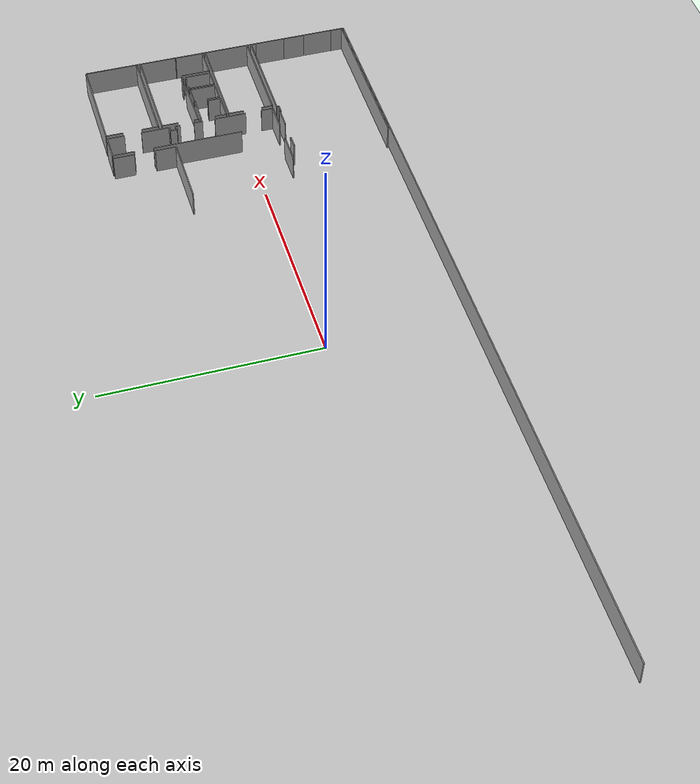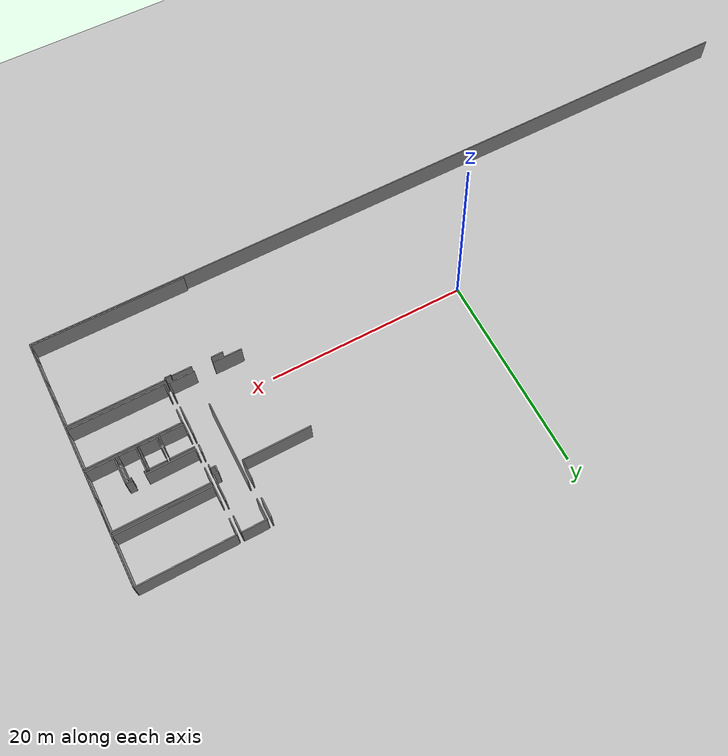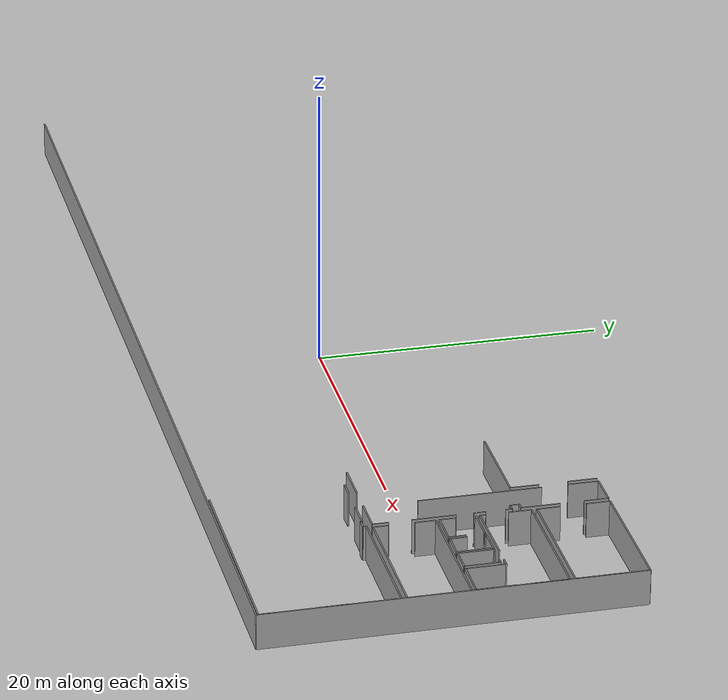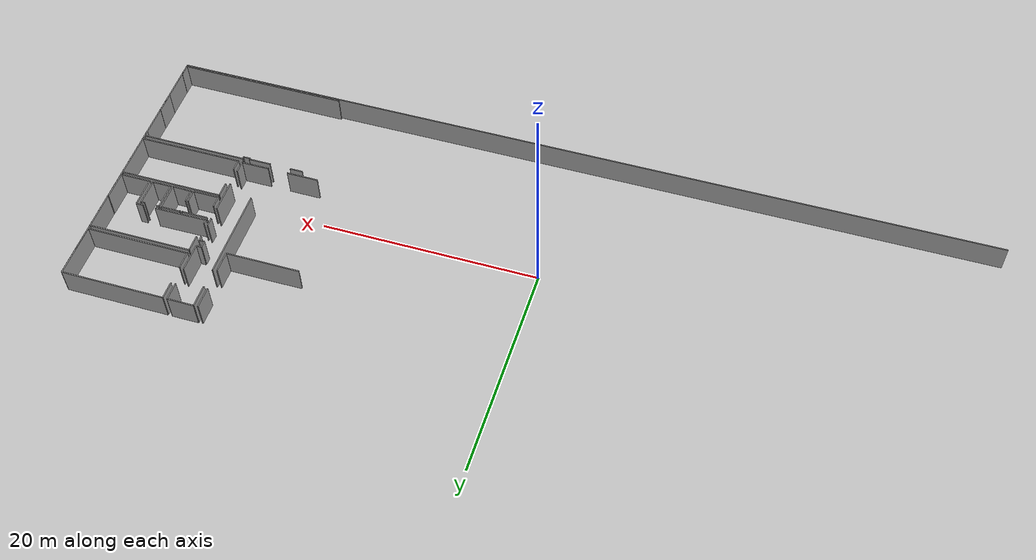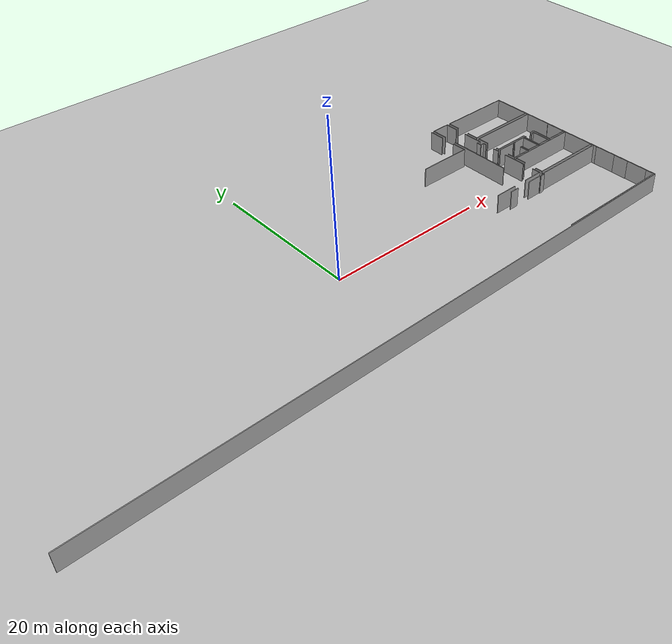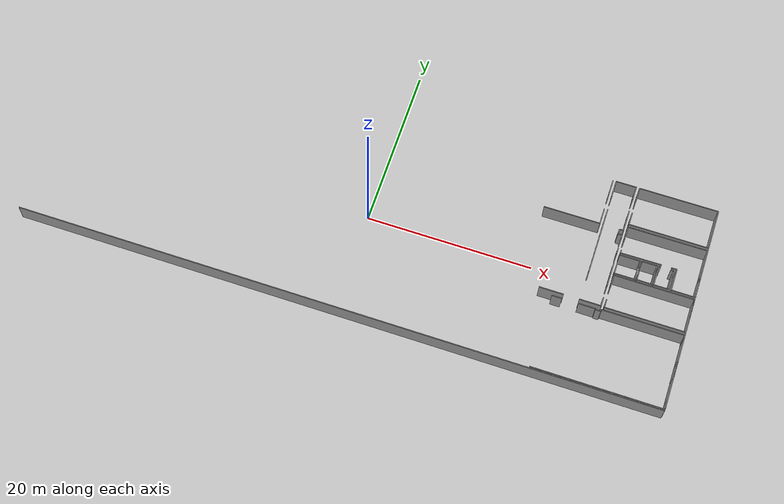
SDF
<sdf version="1.6">
 <world name="default">
  <model name="ground_plane">
   <static>1</static>
   <link name="link">
    <collision name="collision">
     <geometry><plane><normal>0 0 1</normal><size>100 100</size></plane></geometry>
     <surface><friction><ode><mu>100</mu><mu2>50</mu2></ode></friction></surface>
    </collision>
    <visual name="visual">
     <cast_shadows>0</cast_shadows>
     <geometry><plane><normal>0 0 1</normal><size>100 100</size></plane></geometry>
     <material>
      <script><uri>file://media/materials/scripts/gazebo.material</uri><name>Gazebo/Grey</name></script>
     </material>
    </visual>
   </link>
  </model>
  <model name="0510030965_A-40">
   <static>1</static>
   <link name="Wall_162">
    <collision name="Wall_162_Collision">
     <geometry><box><size>8.38063311874 0.1 2.5</size></box></geometry>
     <pose>4.19031655937 0 1.25 0 0 0</pose>
    </collision>
    <visual name="Wall_162_Visual">
     <pose>4.19031655937 0 1.25 0 0 0</pose>
     <geometry><box><size>8.38063311874 0.1 2.5</size></box></geometry>
     <material>
      <script><uri>file://media/materials/scripts/gazebo.material</uri><name>Gazebo/Grey</name></script>
      <ambient>1 1 1 1</ambient>
     </material>
    </visual>
    <pose>65.165898442 -12.2641677142 0 0 0 1.57079632679</pose>
   </link>
   <link name="Wall_163">
    <collision name="Wall_163_Collision">
     <geometry><box><size>2.09084098384 0.1 2.5</size></box></geometry>
     <pose>1.04542049192 0 1.25 0 0 0</pose>
    </collision>
    <visual name="Wall_163_Visual">
     <pose>1.04542049192 0 1.25 0 0 0</pose>
     <geometry><box><size>2.09084098384 0.1 2.5</size></box></geometry>
     <material>
      <script><uri>file://media/materials/scripts/gazebo.material</uri><name>Gazebo/Grey</name></script>
      <ambient>1 1 1 1</ambient>
     </material>
    </visual>
    <pose>65.165898442 -2.09592015542 0 0 0 1.57079632679</pose>
   </link>
   <link name="Wall_164">
    <collision name="Wall_164_Collision">
     <geometry><box><size>2.43241527307 0.1 2.5</size></box></geometry>
     <pose>1.21620763653 0 1.25 0 0 0</pose>
    </collision>
    <visual name="Wall_164_Visual">
     <pose>1.21620763653 0 1.25 0 0 0</pose>
     <geometry><box><size>2.43241527307 0.1 2.5</size></box></geometry>
     <material>
      <script><uri>file://media/materials/scripts/gazebo.material</uri><name>Gazebo/Grey</name></script>
      <ambient>1 1 1 1</ambient>
     </material>
    </visual>
    <pose>65.165898442 -0.00507917158711 0 0 0 0.0</pose>
   </link>
   <link name="Wall_165">
    <collision name="Wall_165_Collision">
     <geometry><box><size>1.6570797303 0.1 2.5</size></box></geometry>
     <pose>0.828539865148 0 1.25 0 0 0</pose>
    </collision>
    <visual name="Wall_165_Visual">
     <pose>0.828539865148 0 1.25 0 0 0</pose>
     <geometry><box><size>1.6570797303 0.1 2.5</size></box></geometry>
     <material>
      <script><uri>file://media/materials/scripts/gazebo.material</uri><name>Gazebo/Grey</name></script>
      <ambient>1 1 1 1</ambient>
     </material>
    </visual>
    <pose>67.598313715 -0.00507917158711 0 0 0 -1.57079632679</pose>
   </link>
   <link name="Wall_166">
    <collision name="Wall_166_Collision">
     <geometry><box><size>2.65386715427 0.1 2.5</size></box></geometry>
     <pose>1.32693357713 0 1.25 0 0 0</pose>
    </collision>
    <visual name="Wall_166_Visual">
     <pose>1.32693357713 0 1.25 0 0 0</pose>
     <geometry><box><size>2.65386715427 0.1 2.5</size></box></geometry>
     <material>
      <script><uri>file://media/materials/scripts/gazebo.material</uri><name>Gazebo/Grey</name></script>
      <ambient>1 1 1 1</ambient>
     </material>
    </visual>
    <pose>67.598313715 -3.26514545478 0 0 0 -1.57079632679</pose>
   </link>
   <link name="Wall_167">
    <collision name="Wall_167_Collision">
     <geometry><box><size>0.489378182418 0.1 2.5</size></box></geometry>
     <pose>0.244689091209 0 1.25 0 0 0</pose>
    </collision>
    <visual name="Wall_167_Visual">
     <pose>0.244689091209 0 1.25 0 0 0</pose>
     <geometry><box><size>0.489378182418 0.1 2.5</size></box></geometry>
     <material>
      <script><uri>file://media/materials/scripts/gazebo.material</uri><name>Gazebo/Grey</name></script>
      <ambient>1 1 1 1</ambient>
     </material>
    </visual>
    <pose>67.598313715 -5.91901260904 0 0 0 3.14159265359</pose>
   </link>
   <link name="Wall_168">
    <collision name="Wall_168_Collision">
     <geometry><box><size>0.625499980953 0.1 2.5</size></box></geometry>
     <pose>0.312749990477 0 1.25 0 0 0</pose>
    </collision>
    <visual name="Wall_168_Visual">
     <pose>0.312749990477 0 1.25 0 0 0</pose>
     <geometry><box><size>0.625499980953 0.1 2.5</size></box></geometry>
     <material>
      <script><uri>file://media/materials/scripts/gazebo.material</uri><name>Gazebo/Grey</name></script>
      <ambient>1 1 1 1</ambient>
     </material>
    </visual>
    <pose>67.1089355326 -5.91901260904 0 0 0 -1.57079632679</pose>
   </link>
   <link name="Wall_169">
    <collision name="Wall_169_Collision">
     <geometry><box><size>0.496869960509 0.1 2.5</size></box></geometry>
     <pose>0.248434980255 0 1.25 0 0 0</pose>
    </collision>
    <visual name="Wall_169_Visual">
     <pose>0.248434980255 0 1.25 0 0 0</pose>
     <geometry><box><size>0.496869960509 0.1 2.5</size></box></geometry>
     <material>
      <script><uri>file://media/materials/scripts/gazebo.material</uri><name>Gazebo/Grey</name></script>
      <ambient>1 1 1 1</ambient>
     </material>
    </visual>
    <pose>67.1089355326 -6.54451259 0 0 0 0.0</pose>
   </link>
   <link name="Wall_170">
    <collision name="Wall_170_Collision">
     <geometry><box><size>0.419539573096 0.1 2.5</size></box></geometry>
     <pose>0.209769786548 0 1.25 0 0 0</pose>
    </collision>
    <visual name="Wall_170_Visual">
     <pose>0.209769786548 0 1.25 0 0 0</pose>
     <geometry><box><size>0.419539573096 0.1 2.5</size></box></geometry>
     <material>
      <script><uri>file://media/materials/scripts/gazebo.material</uri><name>Gazebo/Grey</name></script>
      <ambient>1 1 1 1</ambient>
     </material>
    </visual>
    <pose>67.6058054931 -6.54451259 0 0 0 -1.57079632679</pose>
   </link>
   <link name="Wall_171">
    <collision name="Wall_171_Collision">
     <geometry><box><size>0.812667453938 0.1 2.5</size></box></geometry>
     <pose>0.406333726969 0 1.25 0 0 0</pose>
    </collision>
    <visual name="Wall_171_Visual">
     <pose>0.406333726969 0 1.25 0 0 0</pose>
     <geometry><box><size>0.812667453938 0.1 2.5</size></box></geometry>
     <material>
      <script><uri>file://media/materials/scripts/gazebo.material</uri><name>Gazebo/Grey</name></script>
      <ambient>1 1 1 1</ambient>
     </material>
    </visual>
    <pose>67.6058054931 -8.29352532602 0 0 0 -1.57079632679</pose>
   </link>
   <link name="Wall_172">
    <collision name="Wall_172_Collision">
     <geometry><box><size>2.97855319797 0.1 2.5</size></box></geometry>
     <pose>1.48927659899 0 1.25 0 0 0</pose>
    </collision>
    <visual name="Wall_172_Visual">
     <pose>1.48927659899 0 1.25 0 0 0</pose>
     <geometry><box><size>2.97855319797 0.1 2.5</size></box></geometry>
     <material>
      <script><uri>file://media/materials/scripts/gazebo.material</uri><name>Gazebo/Grey</name></script>
      <ambient>1 1 1 1</ambient>
     </material>
    </visual>
    <pose>67.6058054931 -10.2876080911 0 0 0 -1.57079632679</pose>
   </link>
   <link name="Wall_173">
    <collision name="Wall_173_Collision">
     <geometry><box><size>1.11741774917 0.1 2.5</size></box></geometry>
     <pose>0.558708874583 0 1.25 0 0 0</pose>
    </collision>
    <visual name="Wall_173_Visual">
     <pose>0.558708874583 0 1.25 0 0 0</pose>
     <geometry><box><size>1.11741774917 0.1 2.5</size></box></geometry>
     <material>
      <script><uri>file://media/materials/scripts/gazebo.material</uri><name>Gazebo/Grey</name></script>
      <ambient>1 1 1 1</ambient>
     </material>
    </visual>
    <pose>67.6058054931 -14.7821670286 0 0 0 -1.57079632679</pose>
   </link>
   <link name="Wall_174">
    <collision name="Wall_174_Collision">
     <geometry><box><size>2.56548956865 0.1 2.5</size></box></geometry>
     <pose>1.28274478433 0 1.25 0 0 0</pose>
    </collision>
    <visual name="Wall_174_Visual">
     <pose>1.28274478433 0 1.25 0 0 0</pose>
     <geometry><box><size>2.56548956865 0.1 2.5</size></box></geometry>
     <material>
      <script><uri>file://media/materials/scripts/gazebo.material</uri><name>Gazebo/Grey</name></script>
      <ambient>1 1 1 1</ambient>
     </material>
    </visual>
    <pose>67.6058054931 -15.8995847777 0 0 0 3.14159265359</pose>
   </link>
   <link name="Wall_175">
    <collision name="Wall_175_Collision">
     <geometry><box><size>2.90782573362 0.1 2.5</size></box></geometry>
     <pose>1.45391286681 0 1.25 0 0 0</pose>
    </collision>
    <visual name="Wall_175_Visual">
     <pose>1.45391286681 0 1.25 0 0 0</pose>
     <geometry><box><size>2.90782573362 0.1 2.5</size></box></geometry>
     <material>
      <script><uri>file://media/materials/scripts/gazebo.material</uri><name>Gazebo/Grey</name></script>
      <ambient>1 1 1 1</ambient>
     </material>
    </visual>
    <pose>63.1991162241 -15.8995847777 0 0 0 3.14159265359</pose>
   </link>
   <link name="Wall_178">
    <collision name="Wall_178_Collision">
     <geometry><box><size>1.1845897934 0.1 2.5</size></box></geometry>
     <pose>0.592294896702 0 1.25 0 0 0</pose>
    </collision>
    <visual name="Wall_178_Visual">
     <pose>0.592294896702 0 1.25 0 0 0</pose>
     <geometry><box><size>1.1845897934 0.1 2.5</size></box></geometry>
     <material>
      <script><uri>file://media/materials/scripts/gazebo.material</uri><name>Gazebo/Grey</name></script>
      <ambient>1 1 1 1</ambient>
     </material>
    </visual>
    <pose>61.9547191853 -16.4426751997 0 0 0 0.0</pose>
   </link>
   <link name="Wall_179">
    <collision name="Wall_179_Collision">
     <geometry><box><size>2.01363757571 0.1 2.5</size></box></geometry>
     <pose>1.00681878786 0 1.25 0 0 0</pose>
    </collision>
    <visual name="Wall_179_Visual">
     <pose>1.00681878786 0 1.25 0 0 0</pose>
     <geometry><box><size>2.01363757571 0.1 2.5</size></box></geometry>
     <material>
      <script><uri>file://media/materials/scripts/gazebo.material</uri><name>Gazebo/Grey</name></script>
      <ambient>1 1 1 1</ambient>
     </material>
    </visual>
    <pose>65.0866633652 -16.4426751997 0 0 0 0.0</pose>
   </link>
   <link name="Wall_180">
    <collision name="Wall_180_Collision">
     <geometry><box><size>0.102091348901 0.1 2.5</size></box></geometry>
     <pose>0.0510456744505 0 1.25 0 0 0</pose>
    </collision>
    <visual name="Wall_180_Visual">
     <pose>0.0510456744505 0 1.25 0 0 0</pose>
     <geometry><box><size>0.102091348901 0.1 2.5</size></box></geometry>
     <material>
      <script><uri>file://media/materials/scripts/gazebo.material</uri><name>Gazebo/Grey</name></script>
      <ambient>1 1 1 1</ambient>
     </material>
    </visual>
    <pose>67.1003009409 -16.4426751997 0 0 0 -1.57079632679</pose>
   </link>
   <link name="Wall_181">
    <collision name="Wall_181_Collision">
     <geometry><box><size>0.631341028278 0.1 2.5</size></box></geometry>
     <pose>0.315670514139 0 1.25 0 0 0</pose>
    </collision>
    <visual name="Wall_181_Visual">
     <pose>0.315670514139 0 1.25 0 0 0</pose>
     <geometry><box><size>0.631341028278 0.1 2.5</size></box></geometry>
     <material>
      <script><uri>file://media/materials/scripts/gazebo.material</uri><name>Gazebo/Grey</name></script>
      <ambient>1 1 1 1</ambient>
     </material>
    </visual>
    <pose>67.1003009409 -16.5447665486 0 0 0 0.0</pose>
   </link>
   <link name="Wall_182">
    <collision name="Wall_182_Collision">
     <geometry><box><size>0.214087082397 0.1 2.5</size></box></geometry>
     <pose>0.107043541198 0 1.25 0 0 0</pose>
    </collision>
    <visual name="Wall_182_Visual">
     <pose>0.107043541198 0 1.25 0 0 0</pose>
     <geometry><box><size>0.214087082397 0.1 2.5</size></box></geometry>
     <material>
      <script><uri>file://media/materials/scripts/gazebo.material</uri><name>Gazebo/Grey</name></script>
      <ambient>1 1 1 1</ambient>
     </material>
    </visual>
    <pose>67.7316419692 -16.5447665486 0 0 0 1.57079632679</pose>
   </link>
   <link name="Wall_183">
    <collision name="Wall_183_Collision">
     <geometry><box><size>9.72343910708 0.1 2.5</size></box></geometry>
     <pose>4.86171955354 0 1.25 0 0 0</pose>
    </collision>
    <visual name="Wall_183_Visual">
     <pose>4.86171955354 0 1.25 0 0 0</pose>
     <geometry><box><size>9.72343910708 0.1 2.5</size></box></geometry>
     <material>
      <script><uri>file://media/materials/scripts/gazebo.material</uri><name>Gazebo/Grey</name></script>
      <ambient>1 1 1 1</ambient>
     </material>
    </visual>
    <pose>67.7316419692 -16.3306794662 0 0 0 0.0</pose>
   </link>
   <link name="Wall_184">
    <collision name="Wall_184_Collision">
     <geometry><box><size>0.493695478267 0.1 2.5</size></box></geometry>
     <pose>0.246847739134 0 1.25 0 0 0</pose>
    </collision>
    <visual name="Wall_184_Visual">
     <pose>0.246847739134 0 1.25 0 0 0</pose>
     <geometry><box><size>0.493695478267 0.1 2.5</size></box></geometry>
     <material>
      <script><uri>file://media/materials/scripts/gazebo.material</uri><name>Gazebo/Grey</name></script>
      <ambient>1 1 1 1</ambient>
     </material>
    </visual>
    <pose>77.4550810763 -16.3306794662 0 0 0 -1.57079632679</pose>
   </link>
   <link name="Wall_185">
    <collision name="Wall_185_Collision">
     <geometry><box><size>2.00957423844 0.1 2.5</size></box></geometry>
     <pose>1.00478711922 0 1.25 0 0 0</pose>
    </collision>
    <visual name="Wall_185_Visual">
     <pose>1.00478711922 0 1.25 0 0 0</pose>
     <geometry><box><size>2.00957423844 0.1 2.5</size></box></geometry>
     <material>
      <script><uri>file://media/materials/scripts/gazebo.material</uri><name>Gazebo/Grey</name></script>
      <ambient>1 1 1 1</ambient>
     </material>
    </visual>
    <pose>77.4550810763 -19.6289665156 0 0 0 -1.57079632679</pose>
   </link>
   <link name="Wall_186">
    <collision name="Wall_186_Collision">
     <geometry><box><size>1.13202036748 0.1 2.5</size></box></geometry>
     <pose>0.566010183739 0 1.25 0 0 0</pose>
    </collision>
    <visual name="Wall_186_Visual">
     <pose>0.566010183739 0 1.25 0 0 0</pose>
     <geometry><box><size>1.13202036748 0.1 2.5</size></box></geometry>
     <material>
      <script><uri>file://media/materials/scripts/gazebo.material</uri><name>Gazebo/Grey</name></script>
      <ambient>1 1 1 1</ambient>
     </material>
    </visual>
    <pose>77.4550810763 -24.4320851269 0 0 0 -1.57079632679</pose>
   </link>
   <link name="Wall_187">
    <collision name="Wall_187_Collision">
     <geometry><box><size>15.5004121963 0.1 2.5</size></box></geometry>
     <pose>7.75020609815 0 1.25 0 0 0</pose>
    </collision>
    <visual name="Wall_187_Visual">
     <pose>7.75020609815 0 1.25 0 0 0</pose>
     <geometry><box><size>15.5004121963 0.1 2.5</size></box></geometry>
     <material>
      <script><uri>file://media/materials/scripts/gazebo.material</uri><name>Gazebo/Grey</name></script>
      <ambient>1 1 1 1</ambient>
     </material>
    </visual>
    <pose>77.4550810763 -25.5641054944 0 0 0 3.13904494058</pose>
   </link>
   <link name="Wall_188">
    <collision name="Wall_188_Collision">
     <geometry><box><size>9.46224270821 0.1 2.5</size></box></geometry>
     <pose>4.73112135411 0 1.25 0 0 0</pose>
    </collision>
    <visual name="Wall_188_Visual">
     <pose>4.73112135411 0 1.25 0 0 0</pose>
     <geometry><box><size>9.46224270821 0.1 2.5</size></box></geometry>
     <material>
      <script><uri>file://media/materials/scripts/gazebo.material</uri><name>Gazebo/Grey</name></script>
      <ambient>1 1 1 1</ambient>
     </material>
    </visual>
    <pose>77.4684139017 -15.9550747273 0 0 0 3.14159265359</pose>
   </link>
   <link name="Wall_189">
    <collision name="Wall_189_Collision">
     <geometry><box><size>1.03526214874 0.1 2.5</size></box></geometry>
     <pose>0.517631074372 0 1.25 0 0 0</pose>
    </collision>
    <visual name="Wall_189_Visual">
     <pose>0.517631074372 0 1.25 0 0 0</pose>
     <geometry><box><size>1.03526214874 0.1 2.5</size></box></geometry>
     <material>
      <script><uri>file://media/materials/scripts/gazebo.material</uri><name>Gazebo/Grey</name></script>
      <ambient>1 1 1 1</ambient>
     </material>
    </visual>
    <pose>68.0061711935 -15.9550747273 0 0 0 1.57079632679</pose>
   </link>
   <link name="Wall_190">
    <collision name="Wall_190_Collision">
     <geometry><box><size>1.40261323378 0.1 2.5</size></box></geometry>
     <pose>0.701306616891 0 1.25 0 0 0</pose>
    </collision>
    <visual name="Wall_190_Visual">
     <pose>0.701306616891 0 1.25 0 0 0</pose>
     <geometry><box><size>1.40261323378 0.1 2.5</size></box></geometry>
     <material>
      <script><uri>file://media/materials/scripts/gazebo.material</uri><name>Gazebo/Grey</name></script>
      <ambient>1 1 1 1</ambient>
     </material>
    </visual>
    <pose>68.0061711935 -13.1497212805 0 0 0 1.57079632679</pose>
   </link>
   <link name="Wall_191">
    <collision name="Wall_191_Collision">
     <geometry><box><size>9.4538620751 0.1 2.5</size></box></geometry>
     <pose>4.72693103755 0 1.25 0 0 0</pose>
    </collision>
    <visual name="Wall_191_Visual">
     <pose>4.72693103755 0 1.25 0 0 0</pose>
     <geometry><box><size>9.4538620751 0.1 2.5</size></box></geometry>
     <material>
      <script><uri>file://media/materials/scripts/gazebo.material</uri><name>Gazebo/Grey</name></script>
      <ambient>1 1 1 1</ambient>
     </material>
    </visual>
    <pose>68.0061711935 -11.7471080467 0 0 0 0.0</pose>
   </link>
   <link name="Wall_192">
    <collision name="Wall_192_Collision">
     <geometry><box><size>4.20797502611 0.1 2.5</size></box></geometry>
     <pose>2.10398751305 0 1.25 0 0 0</pose>
    </collision>
    <visual name="Wall_192_Visual">
     <pose>2.10398751305 0 1.25 0 0 0</pose>
     <geometry><box><size>4.20797502611 0.1 2.5</size></box></geometry>
     <material>
      <script><uri>file://media/materials/scripts/gazebo.material</uri><name>Gazebo/Grey</name></script>
      <ambient>1 1 1 1</ambient>
     </material>
    </visual>
    <pose>77.4600332686 -11.7471080467 0 0 0 -1.56880471834</pose>
   </link>
   <link name="Wall_193">
    <collision name="Wall_193_Collision">
     <geometry><box><size>0.38639797849 0.1 2.5</size></box></geometry>
     <pose>0.193198989245 0 1.25 0 0 0</pose>
    </collision>
    <visual name="Wall_193_Visual">
     <pose>0.193198989245 0 1.25 0 0 0</pose>
     <geometry><box><size>0.38639797849 0.1 2.5</size></box></geometry>
     <material>
      <script><uri>file://media/materials/scripts/gazebo.material</uri><name>Gazebo/Grey</name></script>
      <ambient>1 1 1 1</ambient>
     </material>
    </visual>
    <pose>68.0033776491 -8.80804540779 0 0 0 1.57079632679</pose>
   </link>
   <link name="Wall_194">
    <collision name="Wall_194_Collision">
     <geometry><box><size>1.54571889325 0.1 2.5</size></box></geometry>
     <pose>0.772859446624 0 1.25 0 0 0</pose>
    </collision>
    <visual name="Wall_194_Visual">
     <pose>0.772859446624 0 1.25 0 0 0</pose>
     <geometry><box><size>1.54571889325 0.1 2.5</size></box></geometry>
     <material>
      <script><uri>file://media/materials/scripts/gazebo.material</uri><name>Gazebo/Grey</name></script>
      <ambient>1 1 1 1</ambient>
     </material>
    </visual>
    <pose>68.0033776491 -6.86996050944 0 0 0 1.57079632679</pose>
   </link>
   <link name="Wall_195">
    <collision name="Wall_195_Collision">
     <geometry><box><size>9.4612268739 0.1 2.5</size></box></geometry>
     <pose>4.73061343695 0 1.25 0 0 0</pose>
    </collision>
    <visual name="Wall_195_Visual">
     <pose>4.73061343695 0 1.25 0 0 0</pose>
     <geometry><box><size>9.4612268739 0.1 2.5</size></box></geometry>
     <material>
      <script><uri>file://media/materials/scripts/gazebo.material</uri><name>Gazebo/Grey</name></script>
      <ambient>1 1 1 1</ambient>
     </material>
    </visual>
    <pose>68.0033776491 -5.32424161619 0 0 0 0.0</pose>
   </link>
   <link name="Wall_196">
    <collision name="Wall_196_Collision">
     <geometry><box><size>3.4383452059 0.1 2.5</size></box></geometry>
     <pose>1.71917260295 0 1.25 0 0 0</pose>
    </collision>
    <visual name="Wall_196_Visual">
     <pose>1.71917260295 0 1.25 0 0 0</pose>
     <geometry><box><size>3.4383452059 0.1 2.5</size></box></geometry>
     <material>
      <script><uri>file://media/materials/scripts/gazebo.material</uri><name>Gazebo/Grey</name></script>
      <ambient>1 1 1 1</ambient>
     </material>
    </visual>
    <pose>77.464604523 -5.32424161619 0 0 0 -1.57079632679</pose>
   </link>
   <link name="Wall_197">
    <collision name="Wall_197_Collision">
     <geometry><box><size>0.625880918822 0.1 2.5</size></box></geometry>
     <pose>0.312940459411 0 1.25 0 0 0</pose>
    </collision>
    <visual name="Wall_197_Visual">
     <pose>0.312940459411 0 1.25 0 0 0</pose>
     <geometry><box><size>0.625880918822 0.1 2.5</size></box></geometry>
     <material>
      <script><uri>file://media/materials/scripts/gazebo.material</uri><name>Gazebo/Grey</name></script>
      <ambient>1 1 1 1</ambient>
     </material>
    </visual>
    <pose>74.6541719046 -8.76258682209 0 0 0 3.14159265359</pose>
   </link>
   <link name="Wall_198">
    <collision name="Wall_198_Collision">
     <geometry><box><size>4.83939424071 0.1 2.5</size></box></geometry>
     <pose>2.41969712035 0 1.25 0 0 0</pose>
    </collision>
    <visual name="Wall_198_Visual">
     <pose>2.41969712035 0 1.25 0 0 0</pose>
     <geometry><box><size>4.83939424071 0.1 2.5</size></box></geometry>
     <material>
      <script><uri>file://media/materials/scripts/gazebo.material</uri><name>Gazebo/Grey</name></script>
      <ambient>1 1 1 1</ambient>
     </material>
    </visual>
    <pose>72.8425583787 -8.76258682209 0 0 0 -3.13219907002</pose>
   </link>
   <link name="Wall_199">
    <collision name="Wall_199_Collision">
     <geometry><box><size>2.39990857491 0.1 2.5</size></box></geometry>
     <pose>1.19995428746 0 1.25 0 0 0</pose>
    </collision>
    <visual name="Wall_199_Visual">
     <pose>1.19995428746 0 1.25 0 0 0</pose>
     <geometry><box><size>2.39990857491 0.1 2.5</size></box></geometry>
     <material>
      <script><uri>file://media/materials/scripts/gazebo.material</uri><name>Gazebo/Grey</name></script>
      <ambient>1 1 1 1</ambient>
     </material>
    </visual>
    <pose>70.3861440199 -11.5061013549 0 0 0 3.14159265359</pose>
   </link>
   <link name="Wall_200">
    <collision name="Wall_200_Collision">
     <geometry><box><size>1.07932396226 0.1 2.5</size></box></geometry>
     <pose>0.539661981131 0 1.25 0 0 0</pose>
    </collision>
    <visual name="Wall_200_Visual">
     <pose>0.539661981131 0 1.25 0 0 0</pose>
     <geometry><box><size>1.07932396226 0.1 2.5</size></box></geometry>
     <material>
      <script><uri>file://media/materials/scripts/gazebo.material</uri><name>Gazebo/Grey</name></script>
      <ambient>1 1 1 1</ambient>
     </material>
    </visual>
    <pose>67.986235445 -11.5061013549 0 0 0 1.57079632679</pose>
   </link>
   <link name="Wall_201">
    <collision name="Wall_201_Collision">
     <geometry><box><size>2.40206722284 0.1 2.5</size></box></geometry>
     <pose>1.20103361142 0 1.25 0 0 0</pose>
    </collision>
    <visual name="Wall_201_Visual">
     <pose>1.20103361142 0 1.25 0 0 0</pose>
     <geometry><box><size>2.40206722284 0.1 2.5</size></box></geometry>
     <material>
      <script><uri>file://media/materials/scripts/gazebo.material</uri><name>Gazebo/Grey</name></script>
      <ambient>1 1 1 1</ambient>
     </material>
    </visual>
    <pose>67.986235445 -9.0687338895 0 0 0 0.0</pose>
   </link>
   <link name="Wall_202">
    <collision name="Wall_202_Collision">
     <geometry><box><size>0.0789811181796 0.1 2.5</size></box></geometry>
     <pose>0.0394905590898 0 1.25 0 0 0</pose>
    </collision>
    <visual name="Wall_202_Visual">
     <pose>0.0394905590898 0 1.25 0 0 0</pose>
     <geometry><box><size>0.0789811181796 0.1 2.5</size></box></geometry>
     <material>
      <script><uri>file://media/materials/scripts/gazebo.material</uri><name>Gazebo/Grey</name></script>
      <ambient>1 1 1 1</ambient>
     </material>
    </visual>
    <pose>70.3883026678 -9.0687338895 0 0 0 -1.57079632679</pose>
   </link>
   <link name="Wall_203">
    <collision name="Wall_203_Collision">
     <geometry><box><size>1.1904327979 0.1 2.5</size></box></geometry>
     <pose>0.595216398951 0 1.25 0 0 0</pose>
    </collision>
    <visual name="Wall_203_Visual">
     <pose>0.595216398951 0 1.25 0 0 0</pose>
     <geometry><box><size>1.1904327979 0.1 2.5</size></box></geometry>
     <material>
      <script><uri>file://media/materials/scripts/gazebo.material</uri><name>Gazebo/Grey</name></script>
      <ambient>1 1 1 1</ambient>
     </material>
    </visual>
    <pose>70.3883026678 -10.3156705141 0 0 0 -1.57260965814</pose>
   </link>
   <link name="Wall_204">
    <collision name="Wall_204_Collision">
     <geometry><box><size>2.4517161251 0.1 2.5</size></box></geometry>
     <pose>1.22585806255 0 1.25 0 0 0</pose>
    </collision>
    <visual name="Wall_204_Visual">
     <pose>1.22585806255 0 1.25 0 0 0</pose>
     <geometry><box><size>2.4517161251 0.1 2.5</size></box></geometry>
     <material>
      <script><uri>file://media/materials/scripts/gazebo.material</uri><name>Gazebo/Grey</name></script>
      <ambient>1 1 1 1</ambient>
     </material>
    </visual>
    <pose>72.3950833619 -11.4883242543 0 0 0 1.57079632679</pose>
   </link>
   <link name="Wall_205">
    <collision name="Wall_205_Collision">
     <geometry><box><size>1.77224994603 0.1 2.5</size></box></geometry>
     <pose>0.886124973017 0 1.25 0 0 0</pose>
    </collision>
    <visual name="Wall_205_Visual">
     <pose>0.886124973017 0 1.25 0 0 0</pose>
     <geometry><box><size>1.77224994603 0.1 2.5</size></box></geometry>
     <material>
      <script><uri>file://media/materials/scripts/gazebo.material</uri><name>Gazebo/Grey</name></script>
      <ambient>1 1 1 1</ambient>
     </material>
    </visual>
    <pose>72.3950833619 -9.03660812921 0 0 0 3.14159265359</pose>
   </link>
   <link name="Wall_206">
    <collision name="Wall_206_Collision">
     <geometry><box><size>0.101583431742 0.1 2.5</size></box></geometry>
     <pose>0.0507917158711 0 1.25 0 0 0</pose>
    </collision>
    <visual name="Wall_206_Visual">
     <pose>0.0507917158711 0 1.25 0 0 0</pose>
     <geometry><box><size>0.101583431742 0.1 2.5</size></box></geometry>
     <material>
      <script><uri>file://media/materials/scripts/gazebo.material</uri><name>Gazebo/Grey</name></script>
      <ambient>1 1 1 1</ambient>
     </material>
    </visual>
    <pose>70.6228334159 -9.03660812921 0 0 0 -1.57079632679</pose>
   </link>
   <link name="Wall_207">
    <collision name="Wall_207_Collision">
     <geometry><box><size>1.15424174317 0.1 2.5</size></box></geometry>
     <pose>0.577120871586 0 1.25 0 0 0</pose>
    </collision>
    <visual name="Wall_207_Visual">
     <pose>0.577120871586 0 1.25 0 0 0</pose>
     <geometry><box><size>1.15424174317 0.1 2.5</size></box></geometry>
     <material>
      <script><uri>file://media/materials/scripts/gazebo.material</uri><name>Gazebo/Grey</name></script>
      <ambient>1 1 1 1</ambient>
     </material>
    </visual>
    <pose>70.6228334159 -10.3070359224 0 0 0 -1.57079632679</pose>
   </link>
   <link name="Wall_208">
    <collision name="Wall_208_Collision">
     <geometry><box><size>1.77245631517 0.1 2.5</size></box></geometry>
     <pose>0.886228157584 0 1.25 0 0 0</pose>
    </collision>
    <visual name="Wall_208_Visual">
     <pose>0.886228157584 0 1.25 0 0 0</pose>
     <geometry><box><size>1.77245631517 0.1 2.5</size></box></geometry>
     <material>
      <script><uri>file://media/materials/scripts/gazebo.material</uri><name>Gazebo/Grey</name></script>
      <ambient>1 1 1 1</ambient>
     </material>
    </visual>
    <pose>70.6228334159 -11.4612776656 0 0 0 -0.0152599746506</pose>
   </link>
   <link name="Wall_209">
    <collision name="Wall_209_Collision">
     <geometry><box><size>2.42327276421 0.1 2.5</size></box></geometry>
     <pose>1.21163638211 0 1.25 0 0 0</pose>
    </collision>
    <visual name="Wall_209_Visual">
     <pose>1.21163638211 0 1.25 0 0 0</pose>
     <geometry><box><size>2.42327276421 0.1 2.5</size></box></geometry>
     <material>
      <script><uri>file://media/materials/scripts/gazebo.material</uri><name>Gazebo/Grey</name></script>
      <ambient>1 1 1 1</ambient>
     </material>
    </visual>
    <pose>72.604218252 -11.4636902721 0 0 0 1.57079632679</pose>
   </link>
   <link name="Wall_210">
    <collision name="Wall_210_Collision">
     <geometry><box><size>0.238340126725 0.1 2.5</size></box></geometry>
     <pose>0.119170063363 0 1.25 0 0 0</pose>
    </collision>
    <visual name="Wall_210_Visual">
     <pose>0.119170063363 0 1.25 0 0 0</pose>
     <geometry><box><size>0.238340126725 0.1 2.5</size></box></geometry>
     <material>
      <script><uri>file://media/materials/scripts/gazebo.material</uri><name>Gazebo/Grey</name></script>
      <ambient>1 1 1 1</ambient>
     </material>
    </visual>
    <pose>72.604218252 -9.0404175079 0 0 0 0.0</pose>
   </link>
   <link name="Wall_211">
    <collision name="Wall_211_Collision">
     <geometry><box><size>0.333955531853 0.1 2.5</size></box></geometry>
     <pose>0.166977765926 0 1.25 0 0 0</pose>
    </collision>
    <visual name="Wall_211_Visual">
     <pose>0.166977765926 0 1.25 0 0 0</pose>
     <geometry><box><size>0.333955531853 0.1 2.5</size></box></geometry>
     <material>
      <script><uri>file://media/materials/scripts/gazebo.material</uri><name>Gazebo/Grey</name></script>
      <ambient>1 1 1 1</ambient>
     </material>
    </visual>
    <pose>73.9988317905 -9.0404175079 0 0 0 0.0</pose>
   </link>
   <link name="Wall_212">
    <collision name="Wall_212_Collision">
     <geometry><box><size>2.41793963405 0.1 2.5</size></box></geometry>
     <pose>1.20896981702 0 1.25 0 0 0</pose>
    </collision>
    <visual name="Wall_212_Visual">
     <pose>1.20896981702 0 1.25 0 0 0</pose>
     <geometry><box><size>2.41793963405 0.1 2.5</size></box></geometry>
     <material>
      <script><uri>file://media/materials/scripts/gazebo.material</uri><name>Gazebo/Grey</name></script>
      <ambient>1 1 1 1</ambient>
     </material>
    </visual>
    <pose>74.3327873224 -9.0404175079 0 0 0 -1.57079632679</pose>
   </link>
   <link name="Wall_213">
    <collision name="Wall_213_Collision">
     <geometry><box><size>1.72857729748 0.1 2.5</size></box></geometry>
     <pose>0.864288648741 0 1.25 0 0 0</pose>
    </collision>
    <visual name="Wall_213_Visual">
     <pose>0.864288648741 0 1.25 0 0 0</pose>
     <geometry><box><size>1.72857729748 0.1 2.5</size></box></geometry>
     <material>
      <script><uri>file://media/materials/scripts/gazebo.material</uri><name>Gazebo/Grey</name></script>
      <ambient>1 1 1 1</ambient>
     </material>
    </visual>
    <pose>74.3327873224 -11.458357142 0 0 0 -3.13850737726</pose>
   </link>
   <link name="Wall_214">
    <collision name="Wall_214_Collision">
     <geometry><box><size>2.63532817797 0.1 2.5</size></box></geometry>
     <pose>1.31766408899 0 1.25 0 0 0</pose>
    </collision>
    <visual name="Wall_214_Visual">
     <pose>1.31766408899 0 1.25 0 0 0</pose>
     <geometry><box><size>2.63532817797 0.1 2.5</size></box></geometry>
     <material>
      <script><uri>file://media/materials/scripts/gazebo.material</uri><name>Gazebo/Grey</name></script>
      <ambient>1 1 1 1</ambient>
     </material>
    </visual>
    <pose>74.6595050347 -11.4614046449 0 0 0 1.57079632679</pose>
   </link>
   <link name="Wall_215">
    <collision name="Wall_215_Collision">
     <geometry><box><size>2.6448516247 0.1 2.5</size></box></geometry>
     <pose>1.32242581235 0 1.25 0 0 0</pose>
    </collision>
    <visual name="Wall_215_Visual">
     <pose>1.32242581235 0 1.25 0 0 0</pose>
     <geometry><box><size>2.6448516247 0.1 2.5</size></box></geometry>
     <material>
      <script><uri>file://media/materials/scripts/gazebo.material</uri><name>Gazebo/Grey</name></script>
      <ambient>1 1 1 1</ambient>
     </material>
    </visual>
    <pose>77.4400975201 -8.82607646693 0 0 0 -1.57079632679</pose>
   </link>
   <link name="Wall_216">
    <collision name="Wall_216_Collision">
     <geometry><box><size>2.78060879408 0.1 2.5</size></box></geometry>
     <pose>1.39030439704 0 1.25 0 0 0</pose>
    </collision>
    <visual name="Wall_216_Visual">
     <pose>1.39030439704 0 1.25 0 0 0</pose>
     <geometry><box><size>2.78060879408 0.1 2.5</size></box></geometry>
     <material>
      <script><uri>file://media/materials/scripts/gazebo.material</uri><name>Gazebo/Grey</name></script>
      <ambient>1 1 1 1</ambient>
     </material>
    </visual>
    <pose>77.4400975201 -11.4709280916 0 0 0 3.13816769666</pose>
   </link>
   <link name="Wall_217">
    <collision name="Wall_217_Collision">
     <geometry><box><size>1.58990768606 0.1 2.5</size></box></geometry>
     <pose>0.794953843028 0 1.25 0 0 0</pose>
    </collision>
    <visual name="Wall_217_Visual">
     <pose>0.794953843028 0 1.25 0 0 0</pose>
     <geometry><box><size>1.58990768606 0.1 2.5</size></box></geometry>
     <material>
      <script><uri>file://media/materials/scripts/gazebo.material</uri><name>Gazebo/Grey</name></script>
      <ambient>1 1 1 1</ambient>
     </material>
    </visual>
    <pose>68.0033776491 -4.96552512285 0 0 0 1.57079632679</pose>
   </link>
   <link name="Wall_218">
    <collision name="Wall_218_Collision">
     <geometry><box><size>1.60628801442 0.1 2.5</size></box></geometry>
     <pose>0.803144007212 0 1.25 0 0 0</pose>
    </collision>
    <visual name="Wall_218_Visual">
     <pose>0.803144007212 0 1.25 0 0 0</pose>
     <geometry><box><size>1.60628801442 0.1 2.5</size></box></geometry>
     <material>
      <script><uri>file://media/materials/scripts/gazebo.material</uri><name>Gazebo/Grey</name></script>
      <ambient>1 1 1 1</ambient>
     </material>
    </visual>
    <pose>68.0033776491 -1.61695427476 0 0 0 1.57079632679</pose>
   </link>
   <link name="Wall_219">
    <collision name="Wall_219_Collision">
     <geometry><box><size>9.45170342717 0.1 2.5</size></box></geometry>
     <pose>4.72585171359 0 1.25 0 0 0</pose>
    </collision>
    <visual name="Wall_219_Visual">
     <pose>4.72585171359 0 1.25 0 0 0</pose>
     <geometry><box><size>9.45170342717 0.1 2.5</size></box></geometry>
     <material>
      <script><uri>file://media/materials/scripts/gazebo.material</uri><name>Gazebo/Grey</name></script>
      <ambient>1 1 1 1</ambient>
     </material>
    </visual>
    <pose>68.0033776491 -0.0106662603329 0 0 0 0.0</pose>
   </link>
   <link name="Wall_220">
    <collision name="Wall_220_Collision">
     <geometry><box><size>4.95600167613 0.1 2.5</size></box></geometry>
     <pose>2.47800083806 0 1.25 0 0 0</pose>
    </collision>
    <visual name="Wall_220_Visual">
     <pose>2.47800083806 0 1.25 0 0 0</pose>
     <geometry><box><size>4.95600167613 0.1 2.5</size></box></geometry>
     <material>
      <script><uri>file://media/materials/scripts/gazebo.material</uri><name>Gazebo/Grey</name></script>
      <ambient>1 1 1 1</ambient>
     </material>
    </visual>
    <pose>77.4550810763 -0.0106662603329 0 0 0 -1.57079632679</pose>
   </link>
   <link name="Wall_221">
    <collision name="Wall_221_Collision">
     <geometry><box><size>9.45170349626 0.1 2.5</size></box></geometry>
     <pose>4.72585174813 0 1.25 0 0 0</pose>
    </collision>
    <visual name="Wall_221_Visual">
     <pose>4.72585174813 0 1.25 0 0 0</pose>
     <geometry><box><size>9.45170349626 0.1 2.5</size></box></geometry>
     <material>
      <script><uri>file://media/materials/scripts/gazebo.material</uri><name>Gazebo/Grey</name></script>
      <ambient>1 1 1 1</ambient>
     </material>
    </visual>
    <pose>77.4550810763 -4.96666793646 0 0 0 3.14147174273</pose>
   </link>
   <link name="Wall_224">
    <collision name="Wall_224_Collision">
     <geometry><box><size>1.97795639531 0.1 2.5</size></box></geometry>
     <pose>0.988978197656 0 1.25 0 0 0</pose>
    </collision>
    <visual name="Wall_224_Visual">
     <pose>0.988978197656 0 1.25 0 0 0</pose>
     <geometry><box><size>1.97795639531 0.1 2.5</size></box></geometry>
     <material>
      <script><uri>file://media/materials/scripts/gazebo.material</uri><name>Gazebo/Grey</name></script>
      <ambient>1 1 1 1</ambient>
     </material>
    </visual>
    <pose>64.7744212919 -0.00634896448389 0 0 0 -1.57079632679</pose>
   </link>
   <link name="Wall_225">
    <collision name="Wall_225_Collision">
     <geometry><box><size>1.95459220601 0.1 2.5</size></box></geometry>
     <pose>0.977296103006 0 1.25 0 0 0</pose>
    </collision>
    <visual name="Wall_225_Visual">
     <pose>0.977296103006 0 1.25 0 0 0</pose>
     <geometry><box><size>1.95459220601 0.1 2.5</size></box></geometry>
     <material>
      <script><uri>file://media/materials/scripts/gazebo.material</uri><name>Gazebo/Grey</name></script>
      <ambient>1 1 1 1</ambient>
     </material>
    </visual>
    <pose>64.7744212919 -3.96073800363 0 0 0 -1.57079632679</pose>
   </link>
   <link name="Wall_226">
    <collision name="Wall_226_Collision">
     <geometry><box><size>6.75606109015 0.1 2.5</size></box></geometry>
     <pose>3.37803054507 0 1.25 0 0 0</pose>
    </collision>
    <visual name="Wall_226_Visual">
     <pose>3.37803054507 0 1.25 0 0 0</pose>
     <geometry><box><size>6.75606109015 0.1 2.5</size></box></geometry>
     <material>
      <script><uri>file://media/materials/scripts/gazebo.material</uri><name>Gazebo/Grey</name></script>
      <ambient>1 1 1 1</ambient>
     </material>
    </visual>
    <pose>64.7744212919 -5.91533020964 0 0 0 -3.14104760233</pose>
   </link>
   <link name="Wall_251">
    <collision name="Wall_251_Collision">
     <geometry><box><size>25.7018780237 0.1 2.5</size></box></geometry>
     <pose>12.8509390118 0 1.25 0 0 0</pose>
    </collision>
    <visual name="Wall_251_Visual">
     <pose>12.8509390118 0 1.25 0 0 0</pose>
     <geometry><box><size>25.7018780237 0.1 2.5</size></box></geometry>
     <material>
      <script><uri>file://media/materials/scripts/gazebo.material</uri><name>Gazebo/Grey</name></script>
      <ambient>1 1 1 1</ambient>
     </material>
    </visual>
    <pose>77.4684139017 -25.7018780237 0 0 0 1.57079632679</pose>
   </link>
   <link name="Wall_252">
    <collision name="Wall_252_Collision">
     <geometry><box><size>77.4684139017 0.1 2.5</size></box></geometry>
     <pose>38.7342069508 0 1.25 0 0 0</pose>
    </collision>
    <visual name="Wall_252_Visual">
     <pose>38.7342069508 0 1.25 0 0 0</pose>
     <geometry><box><size>77.4684139017 0.1 2.5</size></box></geometry>
     <material>
      <script><uri>file://media/materials/scripts/gazebo.material</uri><name>Gazebo/Grey</name></script>
      <ambient>1 1 1 1</ambient>
     </material>
    </visual>
    <pose>77.4684139017 -25.7018780237 0 0 0 3.14159265359</pose>
   </link>
   <pose>-38.7 12.8518780237 0 0 0 0</pose>
  </model>
 </world>
</sdf>
